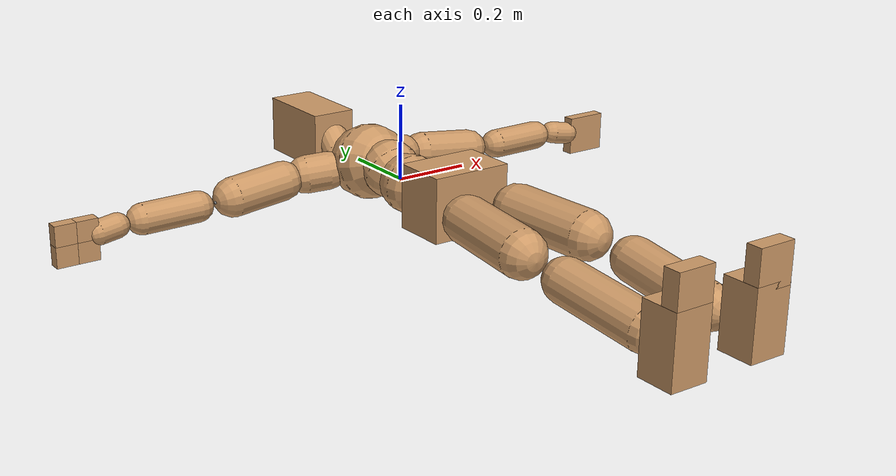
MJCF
<mujoco model="humanoid">
  <compiler coordinate="local"/>
  <option gravity="0 0 0"/>
  <default class="main">
    <joint damping="0.0" armature="0.01" stiffness="0.0" margin=".3" limited="true" solimplimit="0 0.95 .5 0.3 1.5"/>
    <geom conaffinity="1" condim="3" contype="7" margin="0.01" rgba="0.8 0.6 .4 1" solimp=".2 0.95 .01 .5 1.5"/>
    <default class="thorax">
      <joint armature="0.01" stiffness="1" damping="1" margin="{0:.3f}" range="-120.0000 120.0000" solimplimit="{1:.4f} 0.95 {2:.8f} 0.5 1.5"/>
    </default>
  </default>
  <asset>
    <texture type="skybox" builtin="gradient" rgb1=".4 .5 .6" rgb2="0 0 0" width="100" height="100"/>
    <texture builtin="flat" height="1278" mark="cross" markrgb="1 1 1" name="texgeom" random="0.01" rgb1="0.8 0.6 0.4" rgb2="0.8 0.6 0.4" type="cube" width="127"/>
    <texture builtin="checker" height="100" name="texplane" rgb1="0 0 0" rgb2="0.8 0.8 0.8" type="2d" width="100"/>
    <material name="MatPlane" reflectance="0.5" shininess="1" specular="1" texrepeat="60 60" texture="texplane"/>
    <material name="geom" texture="texgeom" texuniform="true"/>
  </asset>
  <worldbody>
    <light cutoff="100" diffuse="1 1 1" dir="-0 0 -1.3" directional="true" exponent="1" pos="0 0 1.3" specular=".1 .1 .1"/>
    <body name="Pelvis" pos="-0.0018 -0.2233 0.0282">
      <freejoint name="Pelvis"/>
      <geom type="box" density="3165.830095" pos="-0.0000 -0.0121 -0.0055" size="0.1069 0.0722 0.083" quat="1.0000 0.0000 0.0000 0.0000" name="Pelvis"/>
      <body name="L_Hip" pos="0.0695 -0.0914 -0.0068">
        <joint name="L_Hip_x" type="hinge" pos="0 0 0" axis="1 0 0" user="250 2.5 1 500 10 2" armature="0.01" range="-180.0000 180.0000" damping="0" stiffness="0"/>
        <joint name="L_Hip_y" type="hinge" pos="0 0 0" axis="0 1 0" user="250 2.5 1 500 10 2" armature="0.01" range="-180.0000 180.0000" damping="0" stiffness="0"/>
        <joint name="L_Hip_z" type="hinge" pos="0 0 0" axis="0 0 1" user="250 2.5 1 500 10 2" armature="0.01" range="-180.0000 180.0000" damping="0" stiffness="0"/>
        <geom type="capsule" contype="1" conaffinity="1" density="2040.816327" fromto="0.0069 -0.0750 -0.0009 0.0274 -0.3002 -0.0036" size="0.0615" name="L_Hip"/>
        <body name="L_Knee" pos="0.0343 -0.3752 -0.0045">
          <joint name="L_Knee_x" type="hinge" pos="0 0 0" axis="1 0 0" user="250 2.5 1 500 10 2" armature="0.01" range="-180.0000 180.0000" damping="0" stiffness="0"/>
          <joint name="L_Knee_y" type="hinge" pos="0 0 0" axis="0 1 0" user="250 2.5 1 500 10 2" armature="0.01" range="-180.0000 180.0000" damping="0" stiffness="0"/>
          <joint name="L_Knee_z" type="hinge" pos="0 0 0" axis="0 0 1" user="250 2.5 1 500 10 2" armature="0.01" range="-180.0000 180.0000" damping="0" stiffness="0"/>
          <geom type="capsule" contype="1" conaffinity="1" density="1234.567901" fromto="-0.0027 -0.0796 -0.0087 -0.0109 -0.3184 -0.0350" size="0.0541" name="L_Knee"/>
          <body name="L_Ankle" pos="-0.0136 -0.398 -0.0437">
            <site name="L_Ankle" pos="0 0 0"/>
            <joint name="L_Ankle_x" type="hinge" pos="0 0 0" axis="1 0 0" user="150 2.5 1 500 10 2" armature="0.01" range="-180.0000 180.0000" damping="0" stiffness="0"/>
            <joint name="L_Ankle_y" type="hinge" pos="0 0 0" axis="0 1 0" user="150 2.5 1 500 10 2" armature="0.01" range="-180.0000 180.0000" damping="0" stiffness="0"/>
            <joint name="L_Ankle_z" type="hinge" pos="0 0 0" axis="0 0 1" user="150 2.5 1 500 10 2" armature="0.01" range="-180.0000 180.0000" damping="0" stiffness="0"/>
            <geom type="box" density="449.071569" pos="0.0233 -0.0239 0.0242" size="0.0483 0.0464 0.085" quat="1.0000 0.0000 0.0000 0.0000" name="L_Ankle"/>
            <body name="L_Toe" pos="0.0264 -0.0558 0.1193">
              <joint name="L_Toe_x" type="hinge" pos="0 0 0" axis="1 0 0" user="150 1 1 500 1 1" armature="0.01" range="-180.0000 180.0000" damping="0" stiffness="0"/>
              <joint name="L_Toe_y" type="hinge" pos="0 0 0" axis="0 1 0" user="150 1 1 500 1 1" armature="0.01" range="-180.0000 180.0000" damping="0" stiffness="0"/>
              <joint name="L_Toe_z" type="hinge" pos="0 0 0" axis="0 0 1" user="150 1 1 500 1 1" armature="0.01" range="-180.0000 180.0000" damping="0" stiffness="0"/>
              <geom type="box" density="423.206892" pos="-0.0030 0.0055 0.0248" size="0.0478 0.02 0.0496" quat="1.0000 0.0000 0.0000 0.0000" name="L_Toe"/>
            </body>
          </body>
        </body>
      </body>
      <body name="R_Hip" pos="-0.0677 -0.0905 -0.0043">
        <joint name="R_Hip_x" type="hinge" pos="0 0 0" axis="1 0 0" user="250 2.5 1 500 10 2" armature="0.01" range="-180.0000 180.0000" damping="0" stiffness="0"/>
        <joint name="R_Hip_y" type="hinge" pos="0 0 0" axis="0 1 0" user="250 2.5 1 500 10 2" armature="0.01" range="-180.0000 180.0000" damping="0" stiffness="0"/>
        <joint name="R_Hip_z" type="hinge" pos="0 0 0" axis="0 0 1" user="250 2.5 1 500 10 2" armature="0.01" range="-180.0000 180.0000" damping="0" stiffness="0"/>
        <geom type="capsule" contype="1" conaffinity="1" density="2040.816327" fromto="-0.0077 -0.0765 -0.0018 -0.0306 -0.3061 -0.0071" size="0.0606" name="R_Hip"/>
        <body name="R_Knee" pos="-0.0383 -0.3826 -0.0089">
          <joint name="R_Knee_x" type="hinge" pos="0 0 0" axis="1 0 0" user="250 2.5 1 500 10 2" armature="0.01" range="-180.0000 180.0000" damping="0" stiffness="0"/>
          <joint name="R_Knee_y" type="hinge" pos="0 0 0" axis="0 1 0" user="250 2.5 1 500 10 2" armature="0.01" range="-180.0000 180.0000" damping="0" stiffness="0"/>
          <joint name="R_Knee_z" type="hinge" pos="0 0 0" axis="0 0 1" user="250 2.5 1 500 10 2" armature="0.01" range="-180.0000 180.0000" damping="0" stiffness="0"/>
          <geom type="capsule" contype="1" conaffinity="1" density="1234.567901" fromto="0.0032 -0.0797 -0.0085 0.0126 -0.3187 -0.0338" size="0.0541" name="R_Knee"/>
          <body name="R_Ankle" pos="0.0158 -0.3984 -0.0423">
            <site name="R_Ankle" pos="0 0 0"/>
            <joint name="R_Ankle_x" type="hinge" pos="0 0 0" axis="1 0 0" user="150 1 1 500 10 2" armature="0.01" range="-180.0000 180.0000" damping="0" stiffness="0"/>
            <joint name="R_Ankle_y" type="hinge" pos="0 0 0" axis="0 1 0" user="150 1 1 500 10 2" armature="0.01" range="-180.0000 180.0000" damping="0" stiffness="0"/>
            <joint name="R_Ankle_z" type="hinge" pos="0 0 0" axis="0 0 1" user="150 1 1 500 10 2" armature="0.01" range="-180.0000 180.0000" damping="0" stiffness="0"/>
            <geom type="box" density="434.700981" pos="-0.0212 -0.0174 0.0256" size="0.0483 0.0478 0.0865" quat="1.0000 0.0000 0.0000 0.0000" name="R_Ankle"/>
            <body name="R_Toe" pos="-0.0254 -0.0481 0.1233">
              <joint name="R_Toe_x" type="hinge" pos="0 0 0" axis="1 0 0" user="150 1 1 500 1 1" armature="0.01" range="-180.0000 180.0000" damping="0" stiffness="0"/>
              <joint name="R_Toe_y" type="hinge" pos="0 0 0" axis="0 1 0" user="150 1 1 500 1 1" armature="0.01" range="-180.0000 180.0000" damping="0" stiffness="0"/>
              <joint name="R_Toe_z" type="hinge" pos="0 0 0" axis="0 0 1" user="150 1 1 500 1 1" armature="0.01" range="-180.0000 180.0000" damping="0" stiffness="0"/>
              <geom type="box" density="407.384095" pos="0.0042 0.0045 0.0227" size="0.0479 0.0216 0.0493" quat="1.0000 0.0000 0.0000 0.0000" name="R_Toe"/>
            </body>
          </body>
        </body>
      </body>
      <body name="Torso" pos="-0.0025 0.109 -0.0267">
        <joint name="Torso_x" type="hinge" pos="0 0 0" axis="1 0 0" user="500 5 1 500 10 2" armature="0.01" range="-180.0000 180.0000" damping="0" stiffness="0"/>
        <joint name="Torso_y" type="hinge" pos="0 0 0" axis="0 1 0" user="500 5 1 500 10 2" armature="0.01" range="-180.0000 180.0000" damping="0" stiffness="0"/>
        <joint name="Torso_z" type="hinge" pos="0 0 0" axis="0 0 1" user="500 5 1 500 10 2" armature="0.01" range="-180.0000 180.0000" damping="0" stiffness="0"/>
        <geom type="capsule" contype="1" conaffinity="1" density="2040.816327" fromto="0.0025 0.0608 0.0005 0.0030 0.0743 0.0006" size="0.0769" name="Torso"/>
        <body name="Spine" pos="0.0055 0.1352 0.0011">
          <joint name="Spine_x" type="hinge" pos="0 0 0" axis="1 0 0" user="500 5 1 500 10 2" armature="0.01" range="-180.0000 180.0000" damping="0" stiffness="0"/>
          <joint name="Spine_y" type="hinge" pos="0 0 0" axis="0 1 0" user="500 5 1 500 10 2" armature="0.01" range="-180.0000 180.0000" damping="0" stiffness="0"/>
          <joint name="Spine_z" type="hinge" pos="0 0 0" axis="0 0 1" user="500 5 1 500 10 2" armature="0.01" range="-180.0000 180.0000" damping="0" stiffness="0"/>
          <geom type="capsule" contype="1" conaffinity="1" density="2040.816327" fromto="0.0007 0.0238 0.0114 0.0008 0.0291 0.0140" size="0.0755" name="Spine"/>
          <body name="Chest" pos="0.0015 0.0529 0.0254">
            <joint name="Chest_x" type="hinge" pos="0 0 0" axis="1 0 0" user="500 5 1 500 10 2" armature="0.01" range="-180.0000 180.0000" damping="0" stiffness="0"/>
            <joint name="Chest_y" type="hinge" pos="0 0 0" axis="0 1 0" user="500 5 1 500 10 2" armature="0.01" range="-180.0000 180.0000" damping="0" stiffness="0"/>
            <joint name="Chest_z" type="hinge" pos="0 0 0" axis="0 0 1" user="500 5 1 500 10 2" armature="0.01" range="-180.0000 180.0000" damping="0" stiffness="0"/>
            <geom type="capsule" contype="1" conaffinity="1" density="2040.816327" fromto="-0.0009 0.0682 -0.0173 -0.0010 0.0833 -0.0212" size="0.1002" name="Chest"/>
            <body name="Neck" pos="-0.0028 0.2139 -0.0429">
              <joint name="Neck_x" type="hinge" pos="0 0 0" axis="1 0 0" user="150 1 1 250 50 4" armature="0.01" range="-180.0000 180.0000" damping="0" stiffness="0"/>
              <joint name="Neck_y" type="hinge" pos="0 0 0" axis="0 1 0" user="150 1 1 250 50 4" armature="0.01" range="-180.0000 180.0000" damping="0" stiffness="0"/>
              <joint name="Neck_z" type="hinge" pos="0 0 0" axis="0 0 1" user="150 1 1 250 50 4" armature="0.01" range="-180.0000 180.0000" damping="0" stiffness="0"/>
              <geom type="capsule" contype="1" conaffinity="1" density="1000" fromto="0.0010 0.0130 0.0103 0.0041 0.0520 0.0411" size="0.0436" name="Neck"/>
              <body name="Head" pos="0.0052 0.065 0.0513">
                <joint name="Head_x" type="hinge" pos="0 0 0" axis="1 0 0" user="150 1 1 250 50 4" armature="0.01" range="-180.0000 180.0000" damping="0" stiffness="0"/>
                <joint name="Head_y" type="hinge" pos="0 0 0" axis="0 1 0" user="150 1 1 250 50 4" armature="0.01" range="-180.0000 180.0000" damping="0" stiffness="0"/>
                <joint name="Head_z" type="hinge" pos="0 0 0" axis="0 0 1" user="150 1 1 250 50 4" armature="0.01" range="-180.0000 180.0000" damping="0" stiffness="0"/>
                <geom type="box" density="1018.069894" pos="-0.0042 0.0876 -0.0116" size="0.0606 0.1154 0.076" quat="1.0000 0.0000 0.0000 0.0000" name="Head"/>
              </body>
            </body>
            <body name="L_Thorax" pos="0.0788 0.1217 -0.0341">
              <joint class="thorax" name="L_Thorax_x" type="hinge" pos="0 0 0" axis="1 0 0" user="200 2 1 500 50 4" armature="0.01" range="-180.0000 180.0000"/>
              <joint class="thorax" name="L_Thorax_y" type="hinge" pos="0 0 0" axis="0 1 0" user="200 2 1 500 50 4" armature="0.01" range="-180.0000 180.0000"/>
              <joint class="thorax" name="L_Thorax_z" type="hinge" pos="0 0 0" axis="0 0 1" user="200 2 1 500 50 4" armature="0.01" range="-180.0000 180.0000"/>
              <geom type="capsule" contype="1" conaffinity="1" density="1000" fromto="0.0182 0.0061 -0.0018 0.0728 0.0244 -0.0071" size="0.0521" name="L_Thorax"/>
              <body name="L_Shoulder" pos="0.091 0.0305 -0.0089">
                <site name="L_Shoulder" pos="0 0 0"/>
                <joint name="L_Shoulder_x" type="hinge" pos="0 0 0" axis="1 0 0" user="200 2 1 500 50 4" armature="0.01" range="-720.0000 720.0000" damping="0" stiffness="0"/>
                <joint name="L_Shoulder_y" type="hinge" pos="0 0 0" axis="0 1 0" user="200 2 1 500 50 4" armature="0.01" range="-720.0000 720.0000" damping="0" stiffness="0"/>
                <joint name="L_Shoulder_z" type="hinge" pos="0 0 0" axis="0 0 1" user="200 2 1 500 50 4" armature="0.01" range="-720.0000 720.0000" damping="0" stiffness="0"/>
                <geom type="capsule" contype="1" conaffinity="1" density="1000" fromto="0.0519 -0.0026 -0.0055 0.2077 -0.0102 -0.0220" size="0.0517" name="L_Shoulder"/>
                <body name="L_Elbow" pos="0.2596 -0.0128 -0.0275">
                  <site name="L_Elbow" pos="0 0 0"/>
                  <joint name="L_Elbow_x" type="hinge" pos="0 0 0" axis="1 0 0" user="150 1 1 150 10 2" armature="0.01" range="-720.0000 720.0000" damping="0" stiffness="0"/>
                  <joint name="L_Elbow_y" type="hinge" pos="0 0 0" axis="0 1 0" user="150 1 1 150 10 2" armature="0.01" range="-720.0000 720.0000" damping="0" stiffness="0"/>
                  <joint name="L_Elbow_z" type="hinge" pos="0 0 0" axis="0 0 1" user="150 1 1 150 10 2" armature="0.01" range="-720.0000 720.0000" damping="0" stiffness="0"/>
                  <geom type="capsule" contype="1" conaffinity="1" density="1000" fromto="0.0498 0.0018 -0.0002 0.1994 0.0072 -0.0009" size="0.0405" name="L_Elbow"/>
                  <body name="L_Wrist" pos="0.2492 0.009 -0.0012">
                    <joint name="L_Wrist_x" type="hinge" pos="0 0 0" axis="1 0 0" user="100 1 1 150 1 1" armature="0.01" range="-180.0000 180.0000" damping="0" stiffness="0"/>
                    <joint name="L_Wrist_y" type="hinge" pos="0 0 0" axis="0 1 0" user="100 1 1 150 1 1" armature="0.01" range="-180.0000 180.0000" damping="0" stiffness="0"/>
                    <joint name="L_Wrist_z" type="hinge" pos="0 0 0" axis="0 0 1" user="100 1 1 150 1 1" armature="0.01" range="-180.0000 180.0000" damping="0" stiffness="0"/>
                    <geom type="capsule" contype="1" conaffinity="1" density="1000" fromto="0.0168 -0.0016 -0.0030 0.0672 -0.0065 -0.0120" size="0.0318" name="L_Wrist"/>
                    <body name="L_Hand" pos="0.084 -0.0082 -0.0149">
                      <site name="L_Hand" pos="0 0 0"/>
                      <joint name="L_Hand_x" type="hinge" pos="0 0 0" axis="1 0 0" user="50 1 1 150 1 1" armature="0.01" range="-180.0000 180.0000" damping="0" stiffness="0"/>
                      <joint name="L_Hand_y" type="hinge" pos="0 0 0" axis="0 1 0" user="50 1 1 150 1 1" armature="0.01" range="-180.0000 180.0000" damping="0" stiffness="0"/>
                      <joint name="L_Hand_z" type="hinge" pos="0 0 0" axis="0 0 1" user="50 1 1 150 1 1" armature="0.01" range="-180.0000 180.0000" damping="0" stiffness="0"/>
                      <geom type="box" density="400.552564" pos="0.0493 0.0010 -0.0058" size="0.0585 0.0158 0.0538" quat="1.0000 0.0000 0.0000 0.0000" name="L_Hand"/>
                    </body>
                  </body>
                </body>
              </body>
            </body>
            <body name="R_Thorax" pos="-0.0818 0.1188 -0.0386">
              <joint class="thorax" name="R_Thorax_x" type="hinge" pos="0 0 0" axis="1 0 0" user="200 2 1 150 10 2" armature="0.01"/>
              <joint class="thorax" name="R_Thorax_y" type="hinge" pos="0 0 0" axis="0 1 0" user="200 2 1 150 10 2" armature="0.01"/>
              <joint class="thorax" name="R_Thorax_z" type="hinge" pos="0 0 0" axis="0 0 1" user="200 2 1 150 10 2" armature="0.01"/>
              <geom type="capsule" contype="1" conaffinity="1" density="1000" fromto="-0.0192 0.0065 -0.0018 -0.0768 0.0260 -0.0073" size="0.0511" name="R_Thorax"/>
              <body name="R_Shoulder" pos="-0.096 0.0326 -0.0091">
                <site name="R_Shoulder" pos="0 0 0"/>
                <joint name="R_Shoulder_x" type="hinge" pos="0 0 0" axis="1 0 0" user="200 2 1 250 10 2" armature="0.01" range="-720.0000 720.0000" damping="0" stiffness="0"/>
                <joint name="R_Shoulder_y" type="hinge" pos="0 0 0" axis="0 1 0" user="200 2 1 250 10 2" armature="0.01" range="-720.0000 720.0000" damping="0" stiffness="0"/>
                <joint name="R_Shoulder_z" type="hinge" pos="0 0 0" axis="0 0 1" user="200 2 1 250 10 2" armature="0.01" range="-720.0000 720.0000" damping="0" stiffness="0"/>
                <geom type="capsule" contype="1" conaffinity="1" density="1000" fromto="-0.0507 -0.0027 -0.0043 -0.2030 -0.0107 -0.0171" size="0.0531" name="R_Shoulder"/>
                <body name="R_Elbow" pos="-0.2537 -0.0133 -0.0214">
                  <site name="R_Elbow" pos="0 0 0"/>
                  <joint name="R_Elbow_x" type="hinge" pos="0 0 0" axis="1 0 0" user="150 1 1 150 10 2" armature="0.01" range="-720.0000 720.0000" damping="0" stiffness="0"/>
                  <joint name="R_Elbow_y" type="hinge" pos="0 0 0" axis="0 1 0" user="150 1 1 150 10 2" armature="0.01" range="-720.0000 720.0000" damping="0" stiffness="0"/>
                  <joint name="R_Elbow_z" type="hinge" pos="0 0 0" axis="0 0 1" user="150 1 1 150 10 2" armature="0.01" range="-720.0000 720.0000" damping="0" stiffness="0"/>
                  <geom type="capsule" contype="1" conaffinity="1" density="1000" fromto="-0.0511 0.0016 -0.0011 -0.2042 0.0062 -0.0044" size="0.0408" name="R_Elbow"/>
                  <body name="R_Wrist" pos="-0.2553 0.0078 -0.0056">
                    <joint name="R_Wrist_x" type="hinge" pos="0 0 0" axis="1 0 0" user="100 1 1 150 1 1" armature="0.01" range="-180.0000 180.0000" damping="0" stiffness="0"/>
                    <joint name="R_Wrist_y" type="hinge" pos="0 0 0" axis="0 1 0" user="100 1 1 150 1 1" armature="0.01" range="-180.0000 180.0000" damping="0" stiffness="0"/>
                    <joint name="R_Wrist_z" type="hinge" pos="0 0 0" axis="0 0 1" user="100 1 1 150 1 1" armature="0.01" range="-180.0000 180.0000" damping="0" stiffness="0"/>
                    <geom type="capsule" contype="1" conaffinity="1" density="1000" fromto="-0.0169 -0.0012 -0.0021 -0.0677 -0.0049 -0.0083" size="0.0326" name="R_Wrist"/>
                    <body name="R_Hand" pos="-0.0846 -0.0061 -0.0103">
                      <site name="R_Hand" pos="0 0 0"/>
                      <joint name="R_Hand_x" type="hinge" pos="0 0 0" axis="1 0 0" user="50 1 1 150 1 1" armature="0.01" range="-180.0000 180.0000" damping="0" stiffness="0"/>
                      <joint name="R_Hand_y" type="hinge" pos="0 0 0" axis="0 1 0" user="50 1 1 150 1 1" armature="0.01" range="-180.0000 180.0000" damping="0" stiffness="0"/>
                      <joint name="R_Hand_z" type="hinge" pos="0 0 0" axis="0 0 1" user="50 1 1 150 1 1" armature="0.01" range="-180.0000 180.0000" damping="0" stiffness="0"/>
                      <geom type="box" density="403.679611" pos="-0.07465 -0.0009 -0.0352" size="0.02845 0.0164 0.0273" quat="1.0000 0.0000 0.0000 0.0000" name="R_Hand1"/>
                      <geom type="box" density="403.679611" pos="-0.07465 -0.0009 0.0194" size="0.02845 0.0164 0.0273" quat="1.0000 0.0000 0.0000 0.0000" name="R_Hand2"/>
                      <geom type="box" density="403.679611" pos="-0.01775 -0.0009 -0.0352" size="0.02845 0.0164 0.0273" quat="1.0000 0.0000 0.0000 0.0000" name="R_Hand3"/>
                      <geom type="box" density="403.679611" pos="-0.01775 -0.0009 0.0194" size="0.02845 0.0164 0.0273" quat="1.0000 0.0000 0.0000 0.0000" name="R_Hand4"/>
                    </body>
                  </body>
                </body>
              </body>
            </body>
          </body>
        </body>
      </body>
    </body>
  </worldbody>
  <actuator>
    <motor name="L_Hip_x" joint="L_Hip_x" gear="1"/>
    <motor name="L_Hip_y" joint="L_Hip_y" gear="1"/>
    <motor name="L_Hip_z" joint="L_Hip_z" gear="1"/>
    <motor name="L_Knee_x" joint="L_Knee_x" gear="1"/>
    <motor name="L_Knee_y" joint="L_Knee_y" gear="1"/>
    <motor name="L_Knee_z" joint="L_Knee_z" gear="1"/>
    <motor name="L_Ankle_x" joint="L_Ankle_x" gear="1"/>
    <motor name="L_Ankle_y" joint="L_Ankle_y" gear="1"/>
    <motor name="L_Ankle_z" joint="L_Ankle_z" gear="1"/>
    <motor name="L_Toe_x" joint="L_Toe_x" gear="1"/>
    <motor name="L_Toe_y" joint="L_Toe_y" gear="1"/>
    <motor name="L_Toe_z" joint="L_Toe_z" gear="1"/>
    <motor name="R_Hip_x" joint="R_Hip_x" gear="1"/>
    <motor name="R_Hip_y" joint="R_Hip_y" gear="1"/>
    <motor name="R_Hip_z" joint="R_Hip_z" gear="1"/>
    <motor name="R_Knee_x" joint="R_Knee_x" gear="1"/>
    <motor name="R_Knee_y" joint="R_Knee_y" gear="1"/>
    <motor name="R_Knee_z" joint="R_Knee_z" gear="1"/>
    <motor name="R_Ankle_x" joint="R_Ankle_x" gear="1"/>
    <motor name="R_Ankle_y" joint="R_Ankle_y" gear="1"/>
    <motor name="R_Ankle_z" joint="R_Ankle_z" gear="1"/>
    <motor name="R_Toe_x" joint="R_Toe_x" gear="1"/>
    <motor name="R_Toe_y" joint="R_Toe_y" gear="1"/>
    <motor name="R_Toe_z" joint="R_Toe_z" gear="1"/>
    <motor name="Torso_x" joint="Torso_x" gear="1"/>
    <motor name="Torso_y" joint="Torso_y" gear="1"/>
    <motor name="Torso_z" joint="Torso_z" gear="1"/>
    <motor name="Spine_x" joint="Spine_x" gear="1"/>
    <motor name="Spine_y" joint="Spine_y" gear="1"/>
    <motor name="Spine_z" joint="Spine_z" gear="1"/>
    <motor name="Chest_x" joint="Chest_x" gear="1"/>
    <motor name="Chest_y" joint="Chest_y" gear="1"/>
    <motor name="Chest_z" joint="Chest_z" gear="1"/>
    <motor name="Neck_x" joint="Neck_x" gear="1"/>
    <motor name="Neck_y" joint="Neck_y" gear="1"/>
    <motor name="Neck_z" joint="Neck_z" gear="1"/>
    <motor name="Head_x" joint="Head_x" gear="1"/>
    <motor name="Head_y" joint="Head_y" gear="1"/>
    <motor name="Head_z" joint="Head_z" gear="1"/>
    <motor name="L_Thorax_x" joint="L_Thorax_x" gear="1"/>
    <motor name="L_Thorax_y" joint="L_Thorax_y" gear="1"/>
    <motor name="L_Thorax_z" joint="L_Thorax_z" gear="1"/>
    <motor name="L_Shoulder_x" joint="L_Shoulder_x" gear="1"/>
    <motor name="L_Shoulder_y" joint="L_Shoulder_y" gear="1"/>
    <motor name="L_Shoulder_z" joint="L_Shoulder_z" gear="1"/>
    <motor name="L_Elbow_x" joint="L_Elbow_x" gear="1"/>
    <motor name="L_Elbow_y" joint="L_Elbow_y" gear="1"/>
    <motor name="L_Elbow_z" joint="L_Elbow_z" gear="1"/>
    <motor name="L_Wrist_x" joint="L_Wrist_x" gear="1"/>
    <motor name="L_Wrist_y" joint="L_Wrist_y" gear="1"/>
    <motor name="L_Wrist_z" joint="L_Wrist_z" gear="1"/>
    <motor name="L_Hand_x" joint="L_Hand_x" gear="1"/>
    <motor name="L_Hand_y" joint="L_Hand_y" gear="1"/>
    <motor name="L_Hand_z" joint="L_Hand_z" gear="1"/>
    <motor name="R_Thorax_x" joint="R_Thorax_x" gear="1"/>
    <motor name="R_Thorax_y" joint="R_Thorax_y" gear="1"/>
    <motor name="R_Thorax_z" joint="R_Thorax_z" gear="1"/>
    <motor name="R_Shoulder_x" joint="R_Shoulder_x" gear="1"/>
    <motor name="R_Shoulder_y" joint="R_Shoulder_y" gear="1"/>
    <motor name="R_Shoulder_z" joint="R_Shoulder_z" gear="1"/>
    <motor name="R_Elbow_x" joint="R_Elbow_x" gear="1"/>
    <motor name="R_Elbow_y" joint="R_Elbow_y" gear="1"/>
    <motor name="R_Elbow_z" joint="R_Elbow_z" gear="1"/>
    <motor name="R_Wrist_x" joint="R_Wrist_x" gear="1"/>
    <motor name="R_Wrist_y" joint="R_Wrist_y" gear="1"/>
    <motor name="R_Wrist_z" joint="R_Wrist_z" gear="1"/>
    <motor name="R_Hand_x" joint="R_Hand_x" gear="1"/>
    <motor name="R_Hand_y" joint="R_Hand_y" gear="1"/>
    <motor name="R_Hand_z" joint="R_Hand_z" gear="1"/>
    <adhesion name="R_Hand_adh" body="R_Hand" gain="700"
      ctrlrange="0 1"/>
    <adhesion name="L_Hand_adh" body="L_Hand" gain="1000"
      ctrlrange="0 1"/>
  </actuator>
  <contact>
    <exclude body1="Torso" body2="Chest"/>
    <exclude body1="Head" body2="Chest"/>
    <exclude body1="R_Knee" body2="R_Toe"/>
    <exclude body1="R_Knee" body2="L_Ankle"/>
    <exclude body1="R_Knee" body2="L_Toe"/>
    <exclude body1="L_Knee" body2="L_Toe"/>
    <exclude body1="L_Knee" body2="R_Ankle"/>
    <exclude body1="L_Knee" body2="R_Toe"/>
    <exclude body1="L_Shoulder" body2="Chest"/>
    <exclude body1="R_Shoulder" body2="Chest"/>
  </contact>
  <sensor/>
  <size njmax="700" nconmax="700"/>
  <keyframe>
    <key name="tpose1" qpos="
        0.0  0.0  0.0   0.0  0.0
        0.0  0.0  0.0   0.0  0.0
        0.0  0.0  0.0   0.0  0.0
        0.0  0.0  0.0   0.0  0.0
        0.0  0.0  0.0   0.0  0.0
        0.0  0.0  0.0   0.0  0.0
        0.0  0.0  0.0   0.0  0.0
        0.0  0.0  0.0   0.0  0.0
        0.0  0.0  0.0   0.0  0.0
        0.0  0.0  0.0   0.0  0.0
        0.0  0.0  0.0   0.0  0.0
        0.0  0.0  0.0   0.0  0.0
        0.0  0.0  0.0   0.0  0.0
        0.0  0.0  0.0   0.0  0.0
        0.0  0.0  0.0   0.0  0.0
        0.0"/>
  </keyframe>
</mujoco>
